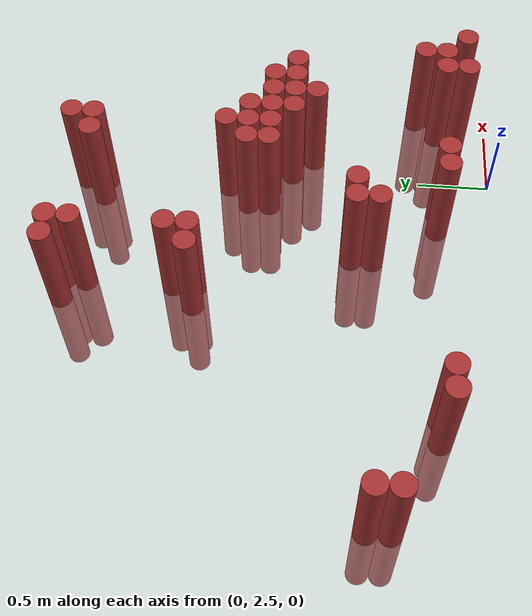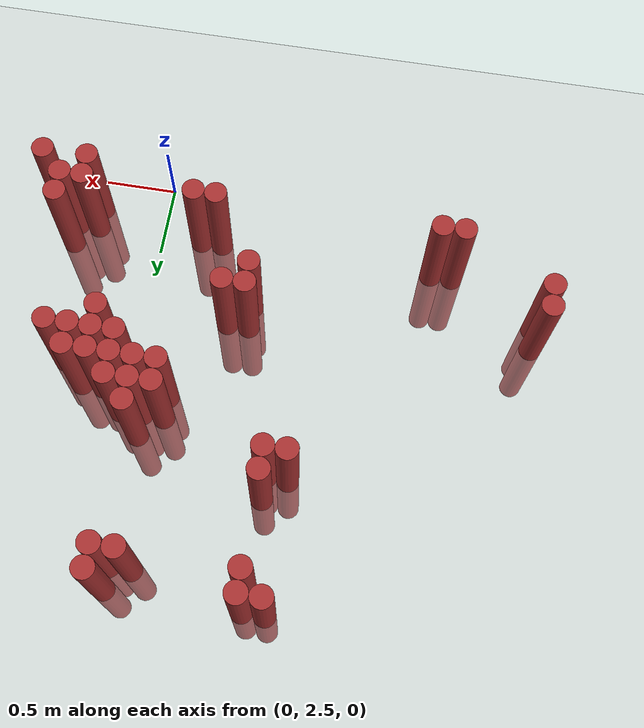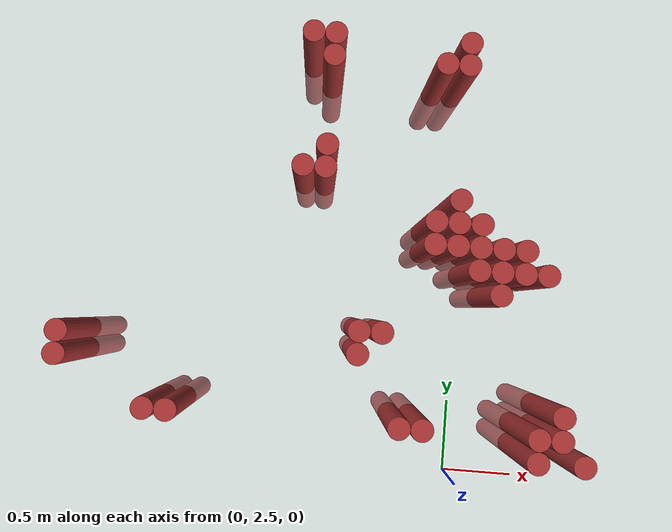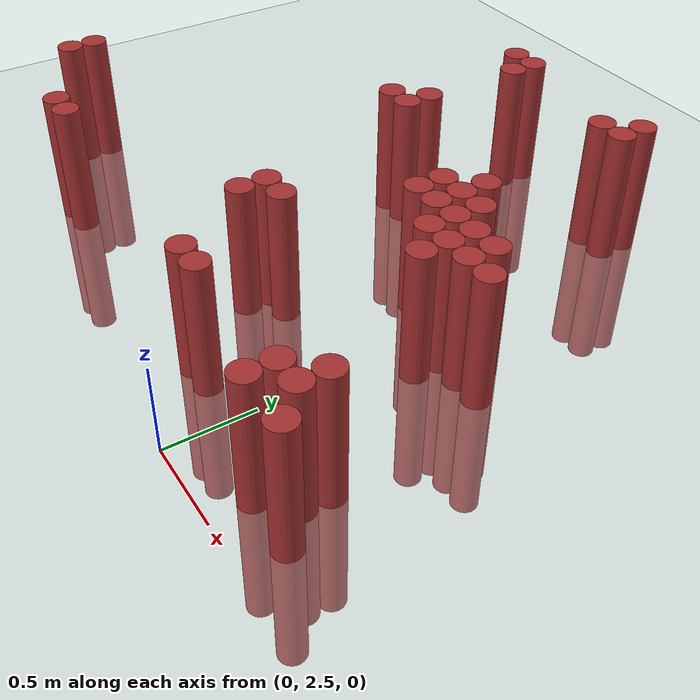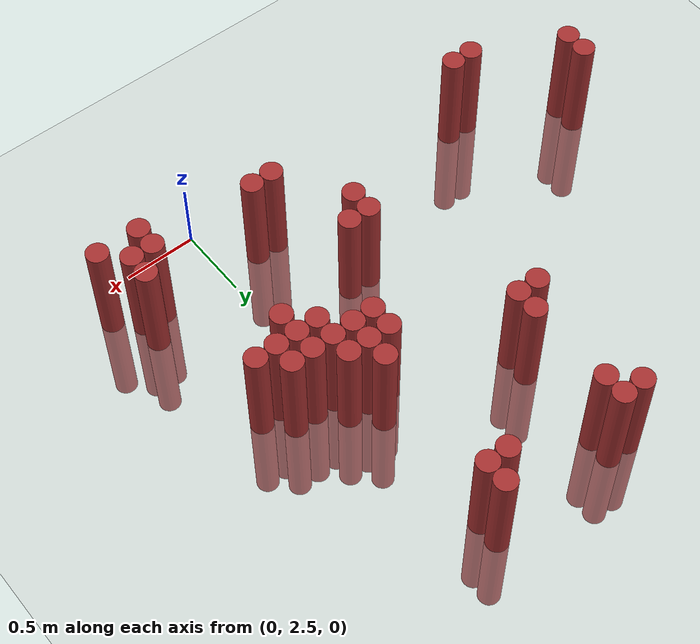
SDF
<sdf version="1.6">
 <world name="default">
  <model name="ground_plane">
   <static>1</static>
   <link name="link">
    <collision name="collision">
     <geometry><plane><normal>0 0 1</normal><size>100 100</size></plane></geometry>
     <surface><friction><ode><mu>100</mu><mu2>50</mu2></ode></friction></surface>
    </collision>
    <visual name="visual">
     <cast_shadows>0</cast_shadows>
     <geometry><plane><normal>0 0 1</normal><size>100 100</size></plane></geometry>
     <material>
      <script><uri>file://media/materials/scripts/gazebo.material</uri><name>Gazebo/Grey</name></script>
     </material>
    </visual>
   </link>
  </model>
  <model name="unit_cylinder_330">
   <static>1</static>
   <pose>-2.675000 3.175000 0.000000 0.000000 0.000000 0.000000</pose>
   <link name="link">
    <inertial>
     <mass>1</mass>
     <inertia><ixx>0.145833</ixx><ixy>0</ixy><ixz>0</ixz><iyy>0.145833</iyy><iyz>0</iyz><izz>0.125</izz></inertia>
    </inertial>
    <collision name="collision">
     <geometry><cylinder><radius>0.075000</radius><length>1.5</length></cylinder></geometry>
    </collision>
    <visual name="visual">
     <geometry><cylinder><radius>0.075000</radius><length>1.5</length></cylinder></geometry>
     <material>
      <ambient>0.648000 0.192000 0.192000 1</ambient>
      <diffuse>0.648000 0.192000 0.192000 1</diffuse>
     </material>
     <material>
      <script><name>Gazebo/Grey</name><uri>file://media/materials/scripts/gazebo.material</uri></script>
     </material>
    </visual>
   </link>
  </model>
  <model name="unit_cylinder_331">
   <static>1</static>
   <pose>-2.675000 3.325000 0.000000 0.000000 0.000000 0.000000</pose>
   <link name="link">
    <inertial>
     <mass>1</mass>
     <inertia><ixx>0.145833</ixx><ixy>0</ixy><ixz>0</ixz><iyy>0.145833</iyy><iyz>0</iyz><izz>0.125</izz></inertia>
    </inertial>
    <collision name="collision">
     <geometry><cylinder><radius>0.075000</radius><length>1.5</length></cylinder></geometry>
    </collision>
    <visual name="visual">
     <geometry><cylinder><radius>0.075000</radius><length>1.5</length></cylinder></geometry>
     <material>
      <ambient>0.648000 0.192000 0.192000 1</ambient>
      <diffuse>0.648000 0.192000 0.192000 1</diffuse>
     </material>
     <material>
      <script><name>Gazebo/Grey</name><uri>file://media/materials/scripts/gazebo.material</uri></script>
     </material>
    </visual>
   </link>
  </model>
  <model name="unit_cylinder_340">
   <static>1</static>
   <pose>-2.075000 2.875000 0.000000 0.000000 0.000000 0.000000</pose>
   <link name="link">
    <inertial>
     <mass>1</mass>
     <inertia><ixx>0.145833</ixx><ixy>0</ixy><ixz>0</ixz><iyy>0.145833</iyy><iyz>0</iyz><izz>0.125</izz></inertia>
    </inertial>
    <collision name="collision">
     <geometry><cylinder><radius>0.075000</radius><length>1.5</length></cylinder></geometry>
    </collision>
    <visual name="visual">
     <geometry><cylinder><radius>0.075000</radius><length>1.5</length></cylinder></geometry>
     <material>
      <ambient>0.648000 0.192000 0.192000 1</ambient>
      <diffuse>0.648000 0.192000 0.192000 1</diffuse>
     </material>
     <material>
      <script><name>Gazebo/Grey</name><uri>file://media/materials/scripts/gazebo.material</uri></script>
     </material>
    </visual>
   </link>
  </model>
  <model name="unit_cylinder_341">
   <static>1</static>
   <pose>-1.925000 2.875000 0.000000 0.000000 0.000000 0.000000</pose>
   <link name="link">
    <inertial>
     <mass>1</mass>
     <inertia><ixx>0.145833</ixx><ixy>0</ixy><ixz>0</ixz><iyy>0.145833</iyy><iyz>0</iyz><izz>0.125</izz></inertia>
    </inertial>
    <collision name="collision">
     <geometry><cylinder><radius>0.075000</radius><length>1.5</length></cylinder></geometry>
    </collision>
    <visual name="visual">
     <geometry><cylinder><radius>0.075000</radius><length>1.5</length></cylinder></geometry>
     <material>
      <ambient>0.648000 0.192000 0.192000 1</ambient>
      <diffuse>0.648000 0.192000 0.192000 1</diffuse>
     </material>
     <material>
      <script><name>Gazebo/Grey</name><uri>file://media/materials/scripts/gazebo.material</uri></script>
     </material>
    </visual>
   </link>
  </model>
  <model name="unit_cylinder_346">
   <static>1</static>
   <pose>-1.175000 4.525000 0.000000 0.000000 0.000000 0.000000</pose>
   <link name="link">
    <inertial>
     <mass>1</mass>
     <inertia><ixx>0.145833</ixx><ixy>0</ixy><ixz>0</ixz><iyy>0.145833</iyy><iyz>0</iyz><izz>0.125</izz></inertia>
    </inertial>
    <collision name="collision">
     <geometry><cylinder><radius>0.075000</radius><length>1.5</length></cylinder></geometry>
    </collision>
    <visual name="visual">
     <geometry><cylinder><radius>0.075000</radius><length>1.5</length></cylinder></geometry>
     <material>
      <ambient>0.648000 0.192000 0.192000 1</ambient>
      <diffuse>0.648000 0.192000 0.192000 1</diffuse>
     </material>
     <material>
      <script><name>Gazebo/Grey</name><uri>file://media/materials/scripts/gazebo.material</uri></script>
     </material>
    </visual>
   </link>
  </model>
  <model name="unit_cylinder_347">
   <static>1</static>
   <pose>-1.175000 5.425000 0.000000 0.000000 0.000000 0.000000</pose>
   <link name="link">
    <inertial>
     <mass>1</mass>
     <inertia><ixx>0.145833</ixx><ixy>0</ixy><ixz>0</ixz><iyy>0.145833</iyy><iyz>0</iyz><izz>0.125</izz></inertia>
    </inertial>
    <collision name="collision">
     <geometry><cylinder><radius>0.075000</radius><length>1.5</length></cylinder></geometry>
    </collision>
    <visual name="visual">
     <geometry><cylinder><radius>0.075000</radius><length>1.5</length></cylinder></geometry>
     <material>
      <ambient>0.648000 0.192000 0.192000 1</ambient>
      <diffuse>0.648000 0.192000 0.192000 1</diffuse>
     </material>
     <material>
      <script><name>Gazebo/Grey</name><uri>file://media/materials/scripts/gazebo.material</uri></script>
     </material>
    </visual>
   </link>
  </model>
  <model name="unit_cylinder_348">
   <static>1</static>
   <pose>-1.025000 4.525000 0.000000 0.000000 0.000000 0.000000</pose>
   <link name="link">
    <inertial>
     <mass>1</mass>
     <inertia><ixx>0.145833</ixx><ixy>0</ixy><ixz>0</ixz><iyy>0.145833</iyy><iyz>0</iyz><izz>0.125</izz></inertia>
    </inertial>
    <collision name="collision">
     <geometry><cylinder><radius>0.075000</radius><length>1.5</length></cylinder></geometry>
    </collision>
    <visual name="visual">
     <geometry><cylinder><radius>0.075000</radius><length>1.5</length></cylinder></geometry>
     <material>
      <ambient>0.648000 0.192000 0.192000 1</ambient>
      <diffuse>0.648000 0.192000 0.192000 1</diffuse>
     </material>
     <material>
      <script><name>Gazebo/Grey</name><uri>file://media/materials/scripts/gazebo.material</uri></script>
     </material>
    </visual>
   </link>
  </model>
  <model name="unit_cylinder_349">
   <static>1</static>
   <pose>-1.025000 4.675000 0.000000 0.000000 0.000000 0.000000</pose>
   <link name="link">
    <inertial>
     <mass>1</mass>
     <inertia><ixx>0.145833</ixx><ixy>0</ixy><ixz>0</ixz><iyy>0.145833</iyy><iyz>0</iyz><izz>0.125</izz></inertia>
    </inertial>
    <collision name="collision">
     <geometry><cylinder><radius>0.075000</radius><length>1.5</length></cylinder></geometry>
    </collision>
    <visual name="visual">
     <geometry><cylinder><radius>0.075000</radius><length>1.5</length></cylinder></geometry>
     <material>
      <ambient>0.648000 0.192000 0.192000 1</ambient>
      <diffuse>0.648000 0.192000 0.192000 1</diffuse>
     </material>
     <material>
      <script><name>Gazebo/Grey</name><uri>file://media/materials/scripts/gazebo.material</uri></script>
     </material>
    </visual>
   </link>
  </model>
  <model name="unit_cylinder_350">
   <static>1</static>
   <pose>-1.025000 5.275000 0.000000 0.000000 0.000000 0.000000</pose>
   <link name="link">
    <inertial>
     <mass>1</mass>
     <inertia><ixx>0.145833</ixx><ixy>0</ixy><ixz>0</ixz><iyy>0.145833</iyy><iyz>0</iyz><izz>0.125</izz></inertia>
    </inertial>
    <collision name="collision">
     <geometry><cylinder><radius>0.075000</radius><length>1.5</length></cylinder></geometry>
    </collision>
    <visual name="visual">
     <geometry><cylinder><radius>0.075000</radius><length>1.5</length></cylinder></geometry>
     <material>
      <ambient>0.648000 0.192000 0.192000 1</ambient>
      <diffuse>0.648000 0.192000 0.192000 1</diffuse>
     </material>
     <material>
      <script><name>Gazebo/Grey</name><uri>file://media/materials/scripts/gazebo.material</uri></script>
     </material>
    </visual>
   </link>
  </model>
  <model name="unit_cylinder_351">
   <static>1</static>
   <pose>-1.025000 5.425000 0.000000 0.000000 0.000000 0.000000</pose>
   <link name="link">
    <inertial>
     <mass>1</mass>
     <inertia><ixx>0.145833</ixx><ixy>0</ixy><ixz>0</ixz><iyy>0.145833</iyy><iyz>0</iyz><izz>0.125</izz></inertia>
    </inertial>
    <collision name="collision">
     <geometry><cylinder><radius>0.075000</radius><length>1.5</length></cylinder></geometry>
    </collision>
    <visual name="visual">
     <geometry><cylinder><radius>0.075000</radius><length>1.5</length></cylinder></geometry>
     <material>
      <ambient>0.648000 0.192000 0.192000 1</ambient>
      <diffuse>0.648000 0.192000 0.192000 1</diffuse>
     </material>
     <material>
      <script><name>Gazebo/Grey</name><uri>file://media/materials/scripts/gazebo.material</uri></script>
     </material>
    </visual>
   </link>
  </model>
  <model name="unit_cylinder_352">
   <static>1</static>
   <pose>-0.725000 3.325000 0.000000 0.000000 0.000000 0.000000</pose>
   <link name="link">
    <inertial>
     <mass>1</mass>
     <inertia><ixx>0.145833</ixx><ixy>0</ixy><ixz>0</ixz><iyy>0.145833</iyy><iyz>0</iyz><izz>0.125</izz></inertia>
    </inertial>
    <collision name="collision">
     <geometry><cylinder><radius>0.075000</radius><length>1.5</length></cylinder></geometry>
    </collision>
    <visual name="visual">
     <geometry><cylinder><radius>0.075000</radius><length>1.5</length></cylinder></geometry>
     <material>
      <ambient>0.648000 0.192000 0.192000 1</ambient>
      <diffuse>0.648000 0.192000 0.192000 1</diffuse>
     </material>
     <material>
      <script><name>Gazebo/Grey</name><uri>file://media/materials/scripts/gazebo.material</uri></script>
     </material>
    </visual>
   </link>
  </model>
  <model name="unit_cylinder_353">
   <static>1</static>
   <pose>-0.725000 3.475000 0.000000 0.000000 0.000000 0.000000</pose>
   <link name="link">
    <inertial>
     <mass>1</mass>
     <inertia><ixx>0.145833</ixx><ixy>0</ixy><ixz>0</ixz><iyy>0.145833</iyy><iyz>0</iyz><izz>0.125</izz></inertia>
    </inertial>
    <collision name="collision">
     <geometry><cylinder><radius>0.075000</radius><length>1.5</length></cylinder></geometry>
    </collision>
    <visual name="visual">
     <geometry><cylinder><radius>0.075000</radius><length>1.5</length></cylinder></geometry>
     <material>
      <ambient>0.648000 0.192000 0.192000 1</ambient>
      <diffuse>0.648000 0.192000 0.192000 1</diffuse>
     </material>
     <material>
      <script><name>Gazebo/Grey</name><uri>file://media/materials/scripts/gazebo.material</uri></script>
     </material>
    </visual>
   </link>
  </model>
  <model name="unit_cylinder_354">
   <static>1</static>
   <pose>-0.575000 3.475000 0.000000 0.000000 0.000000 0.000000</pose>
   <link name="link">
    <inertial>
     <mass>1</mass>
     <inertia><ixx>0.145833</ixx><ixy>0</ixy><ixz>0</ixz><iyy>0.145833</iyy><iyz>0</iyz><izz>0.125</izz></inertia>
    </inertial>
    <collision name="collision">
     <geometry><cylinder><radius>0.075000</radius><length>1.5</length></cylinder></geometry>
    </collision>
    <visual name="visual">
     <geometry><cylinder><radius>0.075000</radius><length>1.5</length></cylinder></geometry>
     <material>
      <ambient>0.648000 0.192000 0.192000 1</ambient>
      <diffuse>0.648000 0.192000 0.192000 1</diffuse>
     </material>
     <material>
      <script><name>Gazebo/Grey</name><uri>file://media/materials/scripts/gazebo.material</uri></script>
     </material>
    </visual>
   </link>
  </model>
  <model name="unit_cylinder_355">
   <static>1</static>
   <pose>-0.425000 2.875000 0.000000 0.000000 0.000000 0.000000</pose>
   <link name="link">
    <inertial>
     <mass>1</mass>
     <inertia><ixx>0.145833</ixx><ixy>0</ixy><ixz>0</ixz><iyy>0.145833</iyy><iyz>0</iyz><izz>0.125</izz></inertia>
    </inertial>
    <collision name="collision">
     <geometry><cylinder><radius>0.075000</radius><length>1.5</length></cylinder></geometry>
    </collision>
    <visual name="visual">
     <geometry><cylinder><radius>0.075000</radius><length>1.5</length></cylinder></geometry>
     <material>
      <ambient>0.648000 0.192000 0.192000 1</ambient>
      <diffuse>0.648000 0.192000 0.192000 1</diffuse>
     </material>
     <material>
      <script><name>Gazebo/Grey</name><uri>file://media/materials/scripts/gazebo.material</uri></script>
     </material>
    </visual>
   </link>
  </model>
  <model name="unit_cylinder_359">
   <static>1</static>
   <pose>-0.275000 2.875000 0.000000 0.000000 0.000000 0.000000</pose>
   <link name="link">
    <inertial>
     <mass>1</mass>
     <inertia><ixx>0.145833</ixx><ixy>0</ixy><ixz>0</ixz><iyy>0.145833</iyy><iyz>0</iyz><izz>0.125</izz></inertia>
    </inertial>
    <collision name="collision">
     <geometry><cylinder><radius>0.075000</radius><length>1.5</length></cylinder></geometry>
    </collision>
    <visual name="visual">
     <geometry><cylinder><radius>0.075000</radius><length>1.5</length></cylinder></geometry>
     <material>
      <ambient>0.648000 0.192000 0.192000 1</ambient>
      <diffuse>0.648000 0.192000 0.192000 1</diffuse>
     </material>
     <material>
      <script><name>Gazebo/Grey</name><uri>file://media/materials/scripts/gazebo.material</uri></script>
     </material>
    </visual>
   </link>
  </model>
  <model name="unit_cylinder_360">
   <static>1</static>
   <pose>-0.275000 4.075000 0.000000 0.000000 0.000000 0.000000</pose>
   <link name="link">
    <inertial>
     <mass>1</mass>
     <inertia><ixx>0.145833</ixx><ixy>0</ixy><ixz>0</ixz><iyy>0.145833</iyy><iyz>0</iyz><izz>0.125</izz></inertia>
    </inertial>
    <collision name="collision">
     <geometry><cylinder><radius>0.075000</radius><length>1.5</length></cylinder></geometry>
    </collision>
    <visual name="visual">
     <geometry><cylinder><radius>0.075000</radius><length>1.5</length></cylinder></geometry>
     <material>
      <ambient>0.648000 0.192000 0.192000 1</ambient>
      <diffuse>0.648000 0.192000 0.192000 1</diffuse>
     </material>
     <material>
      <script><name>Gazebo/Grey</name><uri>file://media/materials/scripts/gazebo.material</uri></script>
     </material>
    </visual>
   </link>
  </model>
  <model name="unit_cylinder_361">
   <static>1</static>
   <pose>-0.275000 4.225000 0.000000 0.000000 0.000000 0.000000</pose>
   <link name="link">
    <inertial>
     <mass>1</mass>
     <inertia><ixx>0.145833</ixx><ixy>0</ixy><ixz>0</ixz><iyy>0.145833</iyy><iyz>0</iyz><izz>0.125</izz></inertia>
    </inertial>
    <collision name="collision">
     <geometry><cylinder><radius>0.075000</radius><length>1.5</length></cylinder></geometry>
    </collision>
    <visual name="visual">
     <geometry><cylinder><radius>0.075000</radius><length>1.5</length></cylinder></geometry>
     <material>
      <ambient>0.648000 0.192000 0.192000 1</ambient>
      <diffuse>0.648000 0.192000 0.192000 1</diffuse>
     </material>
     <material>
      <script><name>Gazebo/Grey</name><uri>file://media/materials/scripts/gazebo.material</uri></script>
     </material>
    </visual>
   </link>
  </model>
  <model name="unit_cylinder_362">
   <static>1</static>
   <pose>-0.275000 5.275000 0.000000 0.000000 0.000000 0.000000</pose>
   <link name="link">
    <inertial>
     <mass>1</mass>
     <inertia><ixx>0.145833</ixx><ixy>0</ixy><ixz>0</ixz><iyy>0.145833</iyy><iyz>0</iyz><izz>0.125</izz></inertia>
    </inertial>
    <collision name="collision">
     <geometry><cylinder><radius>0.075000</radius><length>1.5</length></cylinder></geometry>
    </collision>
    <visual name="visual">
     <geometry><cylinder><radius>0.075000</radius><length>1.5</length></cylinder></geometry>
     <material>
      <ambient>0.648000 0.192000 0.192000 1</ambient>
      <diffuse>0.648000 0.192000 0.192000 1</diffuse>
     </material>
     <material>
      <script><name>Gazebo/Grey</name><uri>file://media/materials/scripts/gazebo.material</uri></script>
     </material>
    </visual>
   </link>
  </model>
  <model name="unit_cylinder_366">
   <static>1</static>
   <pose>-0.125000 4.075000 0.000000 0.000000 0.000000 0.000000</pose>
   <link name="link">
    <inertial>
     <mass>1</mass>
     <inertia><ixx>0.145833</ixx><ixy>0</ixy><ixz>0</ixz><iyy>0.145833</iyy><iyz>0</iyz><izz>0.125</izz></inertia>
    </inertial>
    <collision name="collision">
     <geometry><cylinder><radius>0.075000</radius><length>1.5</length></cylinder></geometry>
    </collision>
    <visual name="visual">
     <geometry><cylinder><radius>0.075000</radius><length>1.5</length></cylinder></geometry>
     <material>
      <ambient>0.648000 0.192000 0.192000 1</ambient>
      <diffuse>0.648000 0.192000 0.192000 1</diffuse>
     </material>
     <material>
      <script><name>Gazebo/Grey</name><uri>file://media/materials/scripts/gazebo.material</uri></script>
     </material>
    </visual>
   </link>
  </model>
  <model name="unit_cylinder_367">
   <static>1</static>
   <pose>-0.125000 4.225000 0.000000 0.000000 0.000000 0.000000</pose>
   <link name="link">
    <inertial>
     <mass>1</mass>
     <inertia><ixx>0.145833</ixx><ixy>0</ixy><ixz>0</ixz><iyy>0.145833</iyy><iyz>0</iyz><izz>0.125</izz></inertia>
    </inertial>
    <collision name="collision">
     <geometry><cylinder><radius>0.075000</radius><length>1.5</length></cylinder></geometry>
    </collision>
    <visual name="visual">
     <geometry><cylinder><radius>0.075000</radius><length>1.5</length></cylinder></geometry>
     <material>
      <ambient>0.648000 0.192000 0.192000 1</ambient>
      <diffuse>0.648000 0.192000 0.192000 1</diffuse>
     </material>
     <material>
      <script><name>Gazebo/Grey</name><uri>file://media/materials/scripts/gazebo.material</uri></script>
     </material>
    </visual>
   </link>
  </model>
  <model name="unit_cylinder_368">
   <static>1</static>
   <pose>-0.125000 4.375000 0.000000 0.000000 0.000000 0.000000</pose>
   <link name="link">
    <inertial>
     <mass>1</mass>
     <inertia><ixx>0.145833</ixx><ixy>0</ixy><ixz>0</ixz><iyy>0.145833</iyy><iyz>0</iyz><izz>0.125</izz></inertia>
    </inertial>
    <collision name="collision">
     <geometry><cylinder><radius>0.075000</radius><length>1.5</length></cylinder></geometry>
    </collision>
    <visual name="visual">
     <geometry><cylinder><radius>0.075000</radius><length>1.5</length></cylinder></geometry>
     <material>
      <ambient>0.648000 0.192000 0.192000 1</ambient>
      <diffuse>0.648000 0.192000 0.192000 1</diffuse>
     </material>
     <material>
      <script><name>Gazebo/Grey</name><uri>file://media/materials/scripts/gazebo.material</uri></script>
     </material>
    </visual>
   </link>
  </model>
  <model name="unit_cylinder_369">
   <static>1</static>
   <pose>-0.125000 5.275000 0.000000 0.000000 0.000000 0.000000</pose>
   <link name="link">
    <inertial>
     <mass>1</mass>
     <inertia><ixx>0.145833</ixx><ixy>0</ixy><ixz>0</ixz><iyy>0.145833</iyy><iyz>0</iyz><izz>0.125</izz></inertia>
    </inertial>
    <collision name="collision">
     <geometry><cylinder><radius>0.075000</radius><length>1.5</length></cylinder></geometry>
    </collision>
    <visual name="visual">
     <geometry><cylinder><radius>0.075000</radius><length>1.5</length></cylinder></geometry>
     <material>
      <ambient>0.648000 0.192000 0.192000 1</ambient>
      <diffuse>0.648000 0.192000 0.192000 1</diffuse>
     </material>
     <material>
      <script><name>Gazebo/Grey</name><uri>file://media/materials/scripts/gazebo.material</uri></script>
     </material>
    </visual>
   </link>
  </model>
  <model name="unit_cylinder_370">
   <static>1</static>
   <pose>-0.125000 5.425000 0.000000 0.000000 0.000000 0.000000</pose>
   <link name="link">
    <inertial>
     <mass>1</mass>
     <inertia><ixx>0.145833</ixx><ixy>0</ixy><ixz>0</ixz><iyy>0.145833</iyy><iyz>0</iyz><izz>0.125</izz></inertia>
    </inertial>
    <collision name="collision">
     <geometry><cylinder><radius>0.075000</radius><length>1.5</length></cylinder></geometry>
    </collision>
    <visual name="visual">
     <geometry><cylinder><radius>0.075000</radius><length>1.5</length></cylinder></geometry>
     <material>
      <ambient>0.648000 0.192000 0.192000 1</ambient>
      <diffuse>0.648000 0.192000 0.192000 1</diffuse>
     </material>
     <material>
      <script><name>Gazebo/Grey</name><uri>file://media/materials/scripts/gazebo.material</uri></script>
     </material>
    </visual>
   </link>
  </model>
  <model name="unit_cylinder_373">
   <static>1</static>
   <pose>0.025000 3.925000 0.000000 0.000000 0.000000 0.000000</pose>
   <link name="link">
    <inertial>
     <mass>1</mass>
     <inertia><ixx>0.145833</ixx><ixy>0</ixy><ixz>0</ixz><iyy>0.145833</iyy><iyz>0</iyz><izz>0.125</izz></inertia>
    </inertial>
    <collision name="collision">
     <geometry><cylinder><radius>0.075000</radius><length>1.5</length></cylinder></geometry>
    </collision>
    <visual name="visual">
     <geometry><cylinder><radius>0.075000</radius><length>1.5</length></cylinder></geometry>
     <material>
      <ambient>0.648000 0.192000 0.192000 1</ambient>
      <diffuse>0.648000 0.192000 0.192000 1</diffuse>
     </material>
     <material>
      <script><name>Gazebo/Grey</name><uri>file://media/materials/scripts/gazebo.material</uri></script>
     </material>
    </visual>
   </link>
  </model>
  <model name="unit_cylinder_374">
   <static>1</static>
   <pose>0.025000 4.075000 0.000000 0.000000 0.000000 0.000000</pose>
   <link name="link">
    <inertial>
     <mass>1</mass>
     <inertia><ixx>0.145833</ixx><ixy>0</ixy><ixz>0</ixz><iyy>0.145833</iyy><iyz>0</iyz><izz>0.125</izz></inertia>
    </inertial>
    <collision name="collision">
     <geometry><cylinder><radius>0.075000</radius><length>1.5</length></cylinder></geometry>
    </collision>
    <visual name="visual">
     <geometry><cylinder><radius>0.075000</radius><length>1.5</length></cylinder></geometry>
     <material>
      <ambient>0.648000 0.192000 0.192000 1</ambient>
      <diffuse>0.648000 0.192000 0.192000 1</diffuse>
     </material>
     <material>
      <script><name>Gazebo/Grey</name><uri>file://media/materials/scripts/gazebo.material</uri></script>
     </material>
    </visual>
   </link>
  </model>
  <model name="unit_cylinder_375">
   <static>1</static>
   <pose>0.025000 4.225000 0.000000 0.000000 0.000000 0.000000</pose>
   <link name="link">
    <inertial>
     <mass>1</mass>
     <inertia><ixx>0.145833</ixx><ixy>0</ixy><ixz>0</ixz><iyy>0.145833</iyy><iyz>0</iyz><izz>0.125</izz></inertia>
    </inertial>
    <collision name="collision">
     <geometry><cylinder><radius>0.075000</radius><length>1.5</length></cylinder></geometry>
    </collision>
    <visual name="visual">
     <geometry><cylinder><radius>0.075000</radius><length>1.5</length></cylinder></geometry>
     <material>
      <ambient>0.648000 0.192000 0.192000 1</ambient>
      <diffuse>0.648000 0.192000 0.192000 1</diffuse>
     </material>
     <material>
      <script><name>Gazebo/Grey</name><uri>file://media/materials/scripts/gazebo.material</uri></script>
     </material>
    </visual>
   </link>
  </model>
  <model name="unit_cylinder_379">
   <static>1</static>
   <pose>0.175000 3.775000 0.000000 0.000000 0.000000 0.000000</pose>
   <link name="link">
    <inertial>
     <mass>1</mass>
     <inertia><ixx>0.145833</ixx><ixy>0</ixy><ixz>0</ixz><iyy>0.145833</iyy><iyz>0</iyz><izz>0.125</izz></inertia>
    </inertial>
    <collision name="collision">
     <geometry><cylinder><radius>0.075000</radius><length>1.5</length></cylinder></geometry>
    </collision>
    <visual name="visual">
     <geometry><cylinder><radius>0.075000</radius><length>1.5</length></cylinder></geometry>
     <material>
      <ambient>0.648000 0.192000 0.192000 1</ambient>
      <diffuse>0.648000 0.192000 0.192000 1</diffuse>
     </material>
     <material>
      <script><name>Gazebo/Grey</name><uri>file://media/materials/scripts/gazebo.material</uri></script>
     </material>
    </visual>
   </link>
  </model>
  <model name="unit_cylinder_380">
   <static>1</static>
   <pose>0.175000 3.925000 0.000000 0.000000 0.000000 0.000000</pose>
   <link name="link">
    <inertial>
     <mass>1</mass>
     <inertia><ixx>0.145833</ixx><ixy>0</ixy><ixz>0</ixz><iyy>0.145833</iyy><iyz>0</iyz><izz>0.125</izz></inertia>
    </inertial>
    <collision name="collision">
     <geometry><cylinder><radius>0.075000</radius><length>1.5</length></cylinder></geometry>
    </collision>
    <visual name="visual">
     <geometry><cylinder><radius>0.075000</radius><length>1.5</length></cylinder></geometry>
     <material>
      <ambient>0.648000 0.192000 0.192000 1</ambient>
      <diffuse>0.648000 0.192000 0.192000 1</diffuse>
     </material>
     <material>
      <script><name>Gazebo/Grey</name><uri>file://media/materials/scripts/gazebo.material</uri></script>
     </material>
    </visual>
   </link>
  </model>
  <model name="unit_cylinder_381">
   <static>1</static>
   <pose>0.175000 4.075000 0.000000 0.000000 0.000000 0.000000</pose>
   <link name="link">
    <inertial>
     <mass>1</mass>
     <inertia><ixx>0.145833</ixx><ixy>0</ixy><ixz>0</ixz><iyy>0.145833</iyy><iyz>0</iyz><izz>0.125</izz></inertia>
    </inertial>
    <collision name="collision">
     <geometry><cylinder><radius>0.075000</radius><length>1.5</length></cylinder></geometry>
    </collision>
    <visual name="visual">
     <geometry><cylinder><radius>0.075000</radius><length>1.5</length></cylinder></geometry>
     <material>
      <ambient>0.648000 0.192000 0.192000 1</ambient>
      <diffuse>0.648000 0.192000 0.192000 1</diffuse>
     </material>
     <material>
      <script><name>Gazebo/Grey</name><uri>file://media/materials/scripts/gazebo.material</uri></script>
     </material>
    </visual>
   </link>
  </model>
  <model name="unit_cylinder_391">
   <static>1</static>
   <pose>0.325000 3.925000 0.000000 0.000000 0.000000 0.000000</pose>
   <link name="link">
    <inertial>
     <mass>1</mass>
     <inertia><ixx>0.145833</ixx><ixy>0</ixy><ixz>0</ixz><iyy>0.145833</iyy><iyz>0</iyz><izz>0.125</izz></inertia>
    </inertial>
    <collision name="collision">
     <geometry><cylinder><radius>0.075000</radius><length>1.5</length></cylinder></geometry>
    </collision>
    <visual name="visual">
     <geometry><cylinder><radius>0.075000</radius><length>1.5</length></cylinder></geometry>
     <material>
      <ambient>0.648000 0.192000 0.192000 1</ambient>
      <diffuse>0.648000 0.192000 0.192000 1</diffuse>
     </material>
     <material>
      <script><name>Gazebo/Grey</name><uri>file://media/materials/scripts/gazebo.material</uri></script>
     </material>
    </visual>
   </link>
  </model>
  <model name="unit_cylinder_392">
   <static>1</static>
   <pose>0.325000 4.075000 0.000000 0.000000 0.000000 0.000000</pose>
   <link name="link">
    <inertial>
     <mass>1</mass>
     <inertia><ixx>0.145833</ixx><ixy>0</ixy><ixz>0</ixz><iyy>0.145833</iyy><iyz>0</iyz><izz>0.125</izz></inertia>
    </inertial>
    <collision name="collision">
     <geometry><cylinder><radius>0.075000</radius><length>1.5</length></cylinder></geometry>
    </collision>
    <visual name="visual">
     <geometry><cylinder><radius>0.075000</radius><length>1.5</length></cylinder></geometry>
     <material>
      <ambient>0.648000 0.192000 0.192000 1</ambient>
      <diffuse>0.648000 0.192000 0.192000 1</diffuse>
     </material>
     <material>
      <script><name>Gazebo/Grey</name><uri>file://media/materials/scripts/gazebo.material</uri></script>
     </material>
    </visual>
   </link>
  </model>
  <model name="unit_cylinder_402">
   <static>1</static>
   <pose>0.475000 2.725000 0.000000 0.000000 0.000000 0.000000</pose>
   <link name="link">
    <inertial>
     <mass>1</mass>
     <inertia><ixx>0.145833</ixx><ixy>0</ixy><ixz>0</ixz><iyy>0.145833</iyy><iyz>0</iyz><izz>0.125</izz></inertia>
    </inertial>
    <collision name="collision">
     <geometry><cylinder><radius>0.075000</radius><length>1.5</length></cylinder></geometry>
    </collision>
    <visual name="visual">
     <geometry><cylinder><radius>0.075000</radius><length>1.5</length></cylinder></geometry>
     <material>
      <ambient>0.648000 0.192000 0.192000 1</ambient>
      <diffuse>0.648000 0.192000 0.192000 1</diffuse>
     </material>
     <material>
      <script><name>Gazebo/Grey</name><uri>file://media/materials/scripts/gazebo.material</uri></script>
     </material>
    </visual>
   </link>
  </model>
  <model name="unit_cylinder_403">
   <static>1</static>
   <pose>0.475000 2.875000 0.000000 0.000000 0.000000 0.000000</pose>
   <link name="link">
    <inertial>
     <mass>1</mass>
     <inertia><ixx>0.145833</ixx><ixy>0</ixy><ixz>0</ixz><iyy>0.145833</iyy><iyz>0</iyz><izz>0.125</izz></inertia>
    </inertial>
    <collision name="collision">
     <geometry><cylinder><radius>0.075000</radius><length>1.5</length></cylinder></geometry>
    </collision>
    <visual name="visual">
     <geometry><cylinder><radius>0.075000</radius><length>1.5</length></cylinder></geometry>
     <material>
      <ambient>0.648000 0.192000 0.192000 1</ambient>
      <diffuse>0.648000 0.192000 0.192000 1</diffuse>
     </material>
     <material>
      <script><name>Gazebo/Grey</name><uri>file://media/materials/scripts/gazebo.material</uri></script>
     </material>
    </visual>
   </link>
  </model>
  <model name="unit_cylinder_404">
   <static>1</static>
   <pose>0.475000 3.925000 0.000000 0.000000 0.000000 0.000000</pose>
   <link name="link">
    <inertial>
     <mass>1</mass>
     <inertia><ixx>0.145833</ixx><ixy>0</ixy><ixz>0</ixz><iyy>0.145833</iyy><iyz>0</iyz><izz>0.125</izz></inertia>
    </inertial>
    <collision name="collision">
     <geometry><cylinder><radius>0.075000</radius><length>1.5</length></cylinder></geometry>
    </collision>
    <visual name="visual">
     <geometry><cylinder><radius>0.075000</radius><length>1.5</length></cylinder></geometry>
     <material>
      <ambient>0.648000 0.192000 0.192000 1</ambient>
      <diffuse>0.648000 0.192000 0.192000 1</diffuse>
     </material>
     <material>
      <script><name>Gazebo/Grey</name><uri>file://media/materials/scripts/gazebo.material</uri></script>
     </material>
    </visual>
   </link>
  </model>
  <model name="unit_cylinder_408">
   <static>1</static>
   <pose>0.625000 2.875000 0.000000 0.000000 0.000000 0.000000</pose>
   <link name="link">
    <inertial>
     <mass>1</mass>
     <inertia><ixx>0.145833</ixx><ixy>0</ixy><ixz>0</ixz><iyy>0.145833</iyy><iyz>0</iyz><izz>0.125</izz></inertia>
    </inertial>
    <collision name="collision">
     <geometry><cylinder><radius>0.075000</radius><length>1.5</length></cylinder></geometry>
    </collision>
    <visual name="visual">
     <geometry><cylinder><radius>0.075000</radius><length>1.5</length></cylinder></geometry>
     <material>
      <ambient>0.648000 0.192000 0.192000 1</ambient>
      <diffuse>0.648000 0.192000 0.192000 1</diffuse>
     </material>
     <material>
      <script><name>Gazebo/Grey</name><uri>file://media/materials/scripts/gazebo.material</uri></script>
     </material>
    </visual>
   </link>
  </model>
  <model name="unit_cylinder_409">
   <static>1</static>
   <pose>0.625000 3.025000 0.000000 0.000000 0.000000 0.000000</pose>
   <link name="link">
    <inertial>
     <mass>1</mass>
     <inertia><ixx>0.145833</ixx><ixy>0</ixy><ixz>0</ixz><iyy>0.145833</iyy><iyz>0</iyz><izz>0.125</izz></inertia>
    </inertial>
    <collision name="collision">
     <geometry><cylinder><radius>0.075000</radius><length>1.5</length></cylinder></geometry>
    </collision>
    <visual name="visual">
     <geometry><cylinder><radius>0.075000</radius><length>1.5</length></cylinder></geometry>
     <material>
      <ambient>0.648000 0.192000 0.192000 1</ambient>
      <diffuse>0.648000 0.192000 0.192000 1</diffuse>
     </material>
     <material>
      <script><name>Gazebo/Grey</name><uri>file://media/materials/scripts/gazebo.material</uri></script>
     </material>
    </visual>
   </link>
  </model>
  <model name="unit_cylinder_418">
   <static>1</static>
   <pose>0.775000 2.725000 0.000000 0.000000 0.000000 0.000000</pose>
   <link name="link">
    <inertial>
     <mass>1</mass>
     <inertia><ixx>0.145833</ixx><ixy>0</ixy><ixz>0</ixz><iyy>0.145833</iyy><iyz>0</iyz><izz>0.125</izz></inertia>
    </inertial>
    <collision name="collision">
     <geometry><cylinder><radius>0.075000</radius><length>1.5</length></cylinder></geometry>
    </collision>
    <visual name="visual">
     <geometry><cylinder><radius>0.075000</radius><length>1.5</length></cylinder></geometry>
     <material>
      <ambient>0.648000 0.192000 0.192000 1</ambient>
      <diffuse>0.648000 0.192000 0.192000 1</diffuse>
     </material>
     <material>
      <script><name>Gazebo/Grey</name><uri>file://media/materials/scripts/gazebo.material</uri></script>
     </material>
    </visual>
   </link>
  </model>
 </world>
</sdf>
